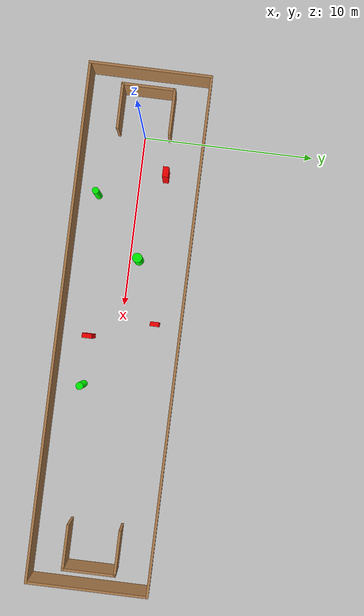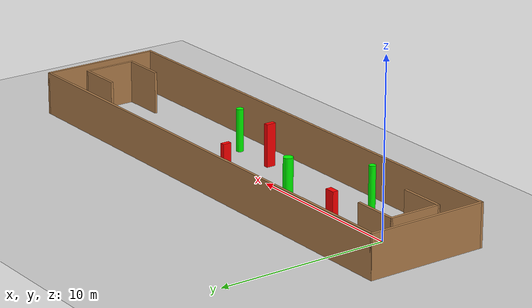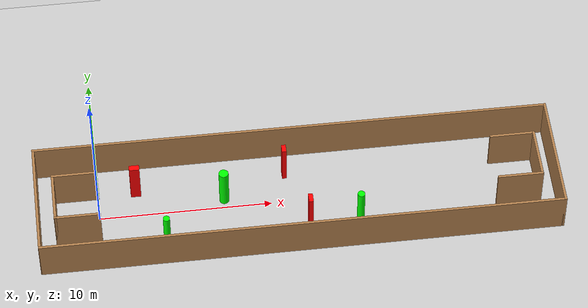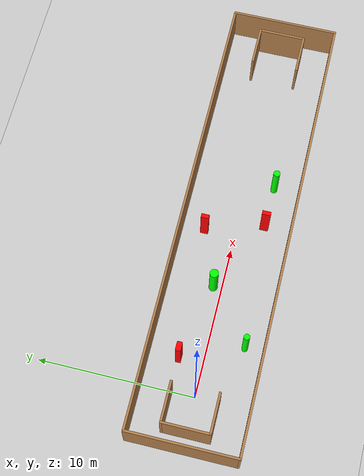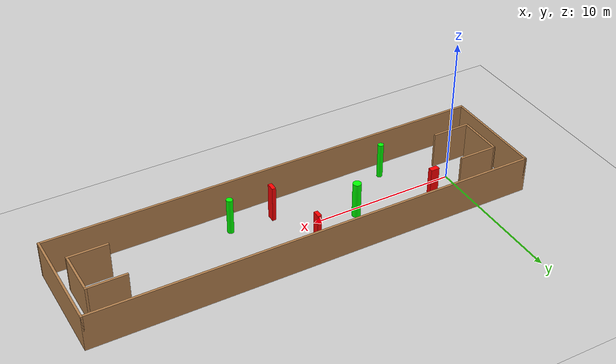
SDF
<sdf version="1.7">
 <world name="default">
  <light name="sun" type="directional">
   <pose>0 0 10 0 -0 0</pose>
   <diffuse>0.8 0.8 0.8 1</diffuse>
   <specular>0.2 0.2 0.2 1</specular>
   <attenuation>
    <range>1000</range>
    <constant>0.9</constant>
    <linear>0.01</linear>
    <quadratic>0.001</quadratic>
   </attenuation>
   <direction>-0.5 0.1 -0.9</direction>
   <spot><inner_angle>0</inner_angle><outer_angle>0</outer_angle><falloff>0</falloff></spot>
  </light>
  <model name="ground_plane">
   <static>1</static>
   <link name="link">
    <collision name="collision">
     <geometry><plane><normal>0 0 1</normal><size>100 100</size></plane></geometry>
     <surface>
      <contact><collide_bitmask>65535</collide_bitmask></contact>
      <friction><ode><mu>100</mu><mu2>50</mu2></ode></friction>
     </surface>
    </collision>
    <visual name="visual">
     <cast_shadows>0</cast_shadows>
     <geometry><plane><normal>0 0 1</normal><size>100 100</size></plane></geometry>
     <material>
      <script><uri>file://media/materials/scripts/gazebo.material</uri><name>Gazebo/Grey</name></script>
     </material>
    </visual>
   </link>
  </model>
  <gravity>0 0 -9.8</gravity>
  <magnetic_field>6e-06 2.3e-05 -4.2e-05</magnetic_field>
  <atmosphere type="adiabatic"/>
  <physics type="ode">
   <max_step_size>0.001</max_step_size>
   <real_time_factor>1</real_time_factor>
   <real_time_update_rate>1000</real_time_update_rate>
  </physics>
  <scene><ambient>0.4 0.4 0.4 1</ambient><background>0.7 0.7 0.7 1</background><shadows>1</shadows></scene>
  <spherical_coordinates>
   <surface_model>EARTH_WGS84</surface_model>
   <latitude_deg>0</latitude_deg>
   <longitude_deg>0</longitude_deg>
   <elevation>0</elevation>
   <heading_deg>0</heading_deg>
  </spherical_coordinates>
  <model name="my_base_walls">
   <link name="Wall_0">
    <collision name="Wall_0_Collision">
     <geometry><box><size>7.15 0.15 2.5</size></box></geometry>
     <pose>0 0 1.25 0 -0 0</pose>
    </collision>
    <visual name="Wall_0_Visual">
     <pose>0 0 1.25 0 -0 0</pose>
     <geometry><box><size>7.15 0.15 2.5</size></box></geometry>
     <material>
      <script><uri>file://media/materials/scripts/gazebo.material</uri><name>Gazebo/Wood</name></script>
      <ambient>1 1 1 1</ambient>
     </material>
     <meta><layer>0</layer></meta>
    </visual>
    <pose>-15 0 0 0 -0 1.5708</pose>
   </link>
   <link name="Wall_10">
    <collision name="Wall_10_Collision">
     <geometry><box><size>2.65 0.15 2.5</size></box></geometry>
     <pose>0 0 1.25 0 -0 0</pose>
    </collision>
    <visual name="Wall_10_Visual">
     <pose>0 0 1.25 0 -0 0</pose>
     <geometry><box><size>2.65 0.15 2.5</size></box></geometry>
     <material>
      <script><uri>file://media/materials/scripts/gazebo.material</uri><name>Gazebo/Wood</name></script>
      <ambient>1 1 1 1</ambient>
     </material>
     <meta><layer>0</layer></meta>
    </visual>
    <pose>-12.75 -1.5 0 0 -0 0</pose>
   </link>
   <link name="Wall_12">
    <collision name="Wall_12_Collision">
     <geometry><box><size>2.65 0.15 2.5</size></box></geometry>
     <pose>0 0 1.25 0 -0 0</pose>
    </collision>
    <visual name="Wall_12_Visual">
     <pose>0 0 1.25 0 -0 0</pose>
     <geometry><box><size>2.65 0.15 2.5</size></box></geometry>
     <material>
      <script><uri>file://media/materials/scripts/gazebo.material</uri><name>Gazebo/Wood</name></script>
      <ambient>1 1 1 1</ambient>
     </material>
     <meta><layer>0</layer></meta>
    </visual>
    <pose>-12.75 1.5 0 0 -0 0</pose>
   </link>
   <link name="Wall_14">
    <collision name="Wall_14_Collision">
     <geometry><box><size>3.15 0.15 2.5</size></box></geometry>
     <pose>0 0 1.25 0 -0 0</pose>
    </collision>
    <visual name="Wall_14_Visual">
     <pose>0 0 1.25 0 -0 0</pose>
     <geometry><box><size>3.15 0.15 2.5</size></box></geometry>
     <material>
      <script><uri>file://media/materials/scripts/gazebo.material</uri><name>Gazebo/Wood</name></script>
      <ambient>1 1 1 1</ambient>
     </material>
     <meta><layer>0</layer></meta>
    </visual>
    <pose>14 0 0 0 -0 -1.5708</pose>
   </link>
   <link name="Wall_15">
    <collision name="Wall_15_Collision">
     <geometry><box><size>2.65 0.15 2.5</size></box></geometry>
     <pose>0 0 1.25 0 -0 0</pose>
    </collision>
    <visual name="Wall_15_Visual">
     <pose>0 0 1.25 0 -0 0</pose>
     <geometry><box><size>2.65 0.15 2.5</size></box></geometry>
     <material>
      <script><uri>file://media/materials/scripts/gazebo.material</uri><name>Gazebo/Wood</name></script>
      <ambient>1 1 1 1</ambient>
     </material>
     <meta><layer>0</layer></meta>
    </visual>
    <pose>12.75 -1.5 0 0 -0 3.14159</pose>
   </link>
   <link name="Wall_17">
    <collision name="Wall_17_Collision">
     <geometry><box><size>2.65 0.15 2.5</size></box></geometry>
     <pose>0 0 1.25 0 -0 0</pose>
    </collision>
    <visual name="Wall_17_Visual">
     <pose>0 0 1.25 0 -0 0</pose>
     <geometry><box><size>2.65 0.15 2.5</size></box></geometry>
     <material>
      <script><uri>file://media/materials/scripts/gazebo.material</uri><name>Gazebo/Wood</name></script>
      <ambient>1 1 1 1</ambient>
     </material>
     <meta><layer>0</layer></meta>
    </visual>
    <pose>12.75 1.5 0 0 -0 3.14159</pose>
   </link>
   <link name="Wall_2">
    <collision name="Wall_2_Collision">
     <geometry><box><size>30.15 0.15 2.5</size></box></geometry>
     <pose>0 0 1.25 0 -0 0</pose>
    </collision>
    <visual name="Wall_2_Visual">
     <pose>0 0 1.25 0 -0 0</pose>
     <geometry><box><size>30.15 0.15 2.5</size></box></geometry>
     <material>
      <script><uri>file://media/materials/scripts/gazebo.material</uri><name>Gazebo/Wood</name></script>
      <ambient>1 1 1 1</ambient>
     </material>
     <meta><layer>0</layer></meta>
    </visual>
    <pose>-0 -3.5 0 0 -0 0</pose>
   </link>
   <link name="Wall_4">
    <collision name="Wall_4_Collision">
     <geometry><box><size>30.15 0.15 2.5</size></box></geometry>
     <pose>0 0 1.25 0 -0 0</pose>
    </collision>
    <visual name="Wall_4_Visual">
     <pose>0 0 1.25 0 -0 0</pose>
     <geometry><box><size>30.15 0.15 2.5</size></box></geometry>
     <material>
      <script><uri>file://media/materials/scripts/gazebo.material</uri><name>Gazebo/Wood</name></script>
      <ambient>1 1 1 1</ambient>
     </material>
     <meta><layer>0</layer></meta>
    </visual>
    <pose>-0 3.5 0 0 -0 0</pose>
   </link>
   <link name="Wall_6">
    <collision name="Wall_6_Collision">
     <geometry><box><size>7.15 0.15 2.5</size></box></geometry>
     <pose>0 0 1.25 0 -0 0</pose>
    </collision>
    <visual name="Wall_6_Visual">
     <pose>0 0 1.25 0 -0 0</pose>
     <geometry><box><size>7.15 0.15 2.5</size></box></geometry>
     <material>
      <script><uri>file://media/materials/scripts/gazebo.material</uri><name>Gazebo/Wood</name></script>
      <ambient>1 1 1 1</ambient>
     </material>
     <meta><layer>0</layer></meta>
    </visual>
    <pose>15 0 0 0 -0 -1.5708</pose>
   </link>
   <link name="Wall_9">
    <collision name="Wall_9_Collision">
     <geometry><box><size>3.15 0.15 2.5</size></box></geometry>
     <pose>0 0 1.25 0 -0 0</pose>
    </collision>
    <visual name="Wall_9_Visual">
     <pose>0 0 1.25 0 -0 0</pose>
     <geometry><box><size>3.15 0.15 2.5</size></box></geometry>
     <material>
      <script><uri>file://media/materials/scripts/gazebo.material</uri><name>Gazebo/Wood</name></script>
      <ambient>1 1 1 1</ambient>
     </material>
     <meta><layer>0</layer></meta>
    </visual>
    <pose>-14 0 0 0 -0 -1.5708</pose>
   </link>
   <static>1</static>
   <pose>11.5 0 0 0 -0 0</pose>
  </model>
  <model name="cylinder1">
   <static>1</static>
   <link name="link">
    <inertial>
     <mass>1</mass>
     <inertia><ixx>0.5</ixx><ixy>0</ixy><ixz>0</ixz><iyy>0.5</iyy><iyz>0</iyz><izz>1</izz></inertia>
    </inertial>
    <collision name="collision">
     <geometry><cylinder><radius>0.1948075463007466</radius><length>2.5</length></cylinder></geometry>
    </collision>
    <visual name="visual">
     <geometry><cylinder><radius>0.1948075463007466</radius><length>2.5</length></cylinder></geometry>
     <material>
      <ambient>0 1 0 1</ambient>
      <diffuse>0 1 0 1</diffuse>
      <specular>0.1 0.1 0.1 1</specular>
      <emissive>0 0 0 0</emissive>
     </material>
    </visual>
   </link>
   <pose>3.7573580291266335 -2.2916371504961894 1.25 0 0 0</pose>
  </model>
  <model name="cylinder2">
   <static>1</static>
   <link name="link">
    <inertial>
     <mass>1</mass>
     <inertia><ixx>0.5</ixx><ixy>0</ixy><ixz>0</ixz><iyy>0.5</iyy><iyz>0</iyz><izz>1</izz></inertia>
    </inertial>
    <collision name="collision">
     <geometry><cylinder><radius>0.2808293958226058</radius><length>2.5</length></cylinder></geometry>
    </collision>
    <visual name="visual">
     <geometry><cylinder><radius>0.2808293958226058</radius><length>2.5</length></cylinder></geometry>
     <material>
      <ambient>0 1 0 1</ambient>
      <diffuse>0 1 0 1</diffuse>
      <specular>0.1 0.1 0.1 1</specular>
      <emissive>0 0 0 0</emissive>
     </material>
    </visual>
   </link>
   <pose>7.291621322015297 0.5512244953641767 1.25 0 0 0</pose>
  </model>
  <model name="cylinder3">
   <static>1</static>
   <link name="link">
    <inertial>
     <mass>1</mass>
     <inertia><ixx>0.5</ixx><ixy>0</ixy><ixz>0</ixz><iyy>0.5</iyy><iyz>0</iyz><izz>1</izz></inertia>
    </inertial>
    <collision name="collision">
     <geometry><cylinder><radius>0.21594070058832393</radius><length>2.5</length></cylinder></geometry>
    </collision>
    <visual name="visual">
     <geometry><cylinder><radius>0.21594070058832393</radius><length>2.5</length></cylinder></geometry>
     <material>
      <ambient>0 1 0 1</ambient>
      <diffuse>0 1 0 1</diffuse>
      <specular>0.1 0.1 0.1 1</specular>
      <emissive>0 0 0 0</emissive>
     </material>
    </visual>
   </link>
   <pose>14.96942692543591 -1.818966678346416 1.25 0 0 0</pose>
  </model>
  <model name="box1">
   <static>1</static>
   <link name="link">
    <inertial>
     <mass>1</mass>
     <inertia><ixx>0.083</ixx><ixy>0</ixy><ixz>0</ixz><iyy>0.083</iyy><iyz>0</iyz><izz>0.083</izz></inertia>
    </inertial>
    <collision name="collision">
     <geometry><box><size>0.26190258793503396 0.5659231624572874 2.5</size></box></geometry>
    </collision>
    <visual name="visual">
     <geometry><box><size>0.26190258793503396 0.5659231624572874 2.5</size></box></geometry>
     <material>
      <ambient>1 0 0 1</ambient>
      <diffuse>1 0 0 1</diffuse>
      <specular>0.1 0.1 0.1 1</specular>
      <emissive>0 0 0 0</emissive>
     </material>
    </visual>
    <sensor name="my_contact" type="contact">
     <contact><collision>box_collision</collision><topic>__default_topic__</topic></contact>
    </sensor>
   </link>
   <pose>12.069010830588727 -1.7585308161963913 1.25 0 0 0</pose>
  </model>
  <model name="box2">
   <static>1</static>
   <link name="link">
    <inertial>
     <mass>1</mass>
     <inertia><ixx>0.083</ixx><ixy>0</ixy><ixz>0</ixz><iyy>0.083</iyy><iyz>0</iyz><izz>0.083</izz></inertia>
    </inertial>
    <collision name="collision">
     <geometry><box><size>0.5908593266364071 0.3412119133692094 2.5</size></box></geometry>
    </collision>
    <visual name="visual">
     <geometry><box><size>0.5908593266364071 0.3412119133692094 2.5</size></box></geometry>
     <material>
      <ambient>1 0 0 1</ambient>
      <diffuse>1 0 0 1</diffuse>
      <specular>0.1 0.1 0.1 1</specular>
      <emissive>0 0 0 0</emissive>
     </material>
    </visual>
    <sensor name="my_contact" type="contact">
     <contact><collision>box_collision</collision><topic>__default_topic__</topic></contact>
    </sensor>
   </link>
   <pose>2.2144027304066007 1.5596279571220197 1.25 0 0 0</pose>
  </model>
  <model name="box3">
   <static>1</static>
   <link name="link">
    <inertial>
     <mass>1</mass>
     <inertia><ixx>0.083</ixx><ixy>0</ixy><ixz>0</ixz><iyy>0.083</iyy><iyz>0</iyz><izz>0.083</izz></inertia>
    </inertial>
    <collision name="collision">
     <geometry><box><size>0.26011630032645616 0.5086647154113965 2.5</size></box></geometry>
    </collision>
    <visual name="visual">
     <geometry><box><size>0.26011630032645616 0.5086647154113965 2.5</size></box></geometry>
     <material>
      <ambient>1 0 0 1</ambient>
      <diffuse>1 0 0 1</diffuse>
      <specular>0.1 0.1 0.1 1</specular>
      <emissive>0 0 0 0</emissive>
     </material>
    </visual>
    <sensor name="my_contact" type="contact">
     <contact><collision>box_collision</collision><topic>__default_topic__</topic></contact>
    </sensor>
   </link>
   <pose>10.937538776542729 1.989739501075933 1.25 0 0 0</pose>
  </model>
 </world>
</sdf>
